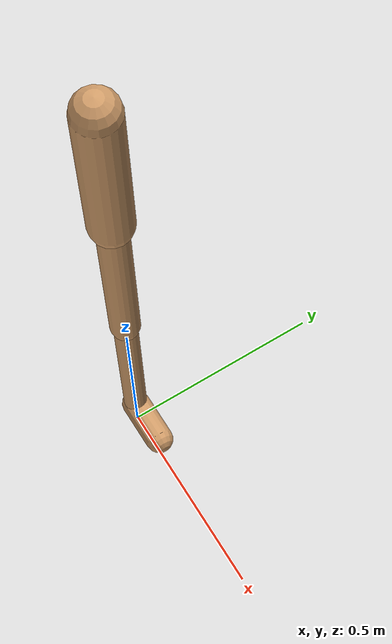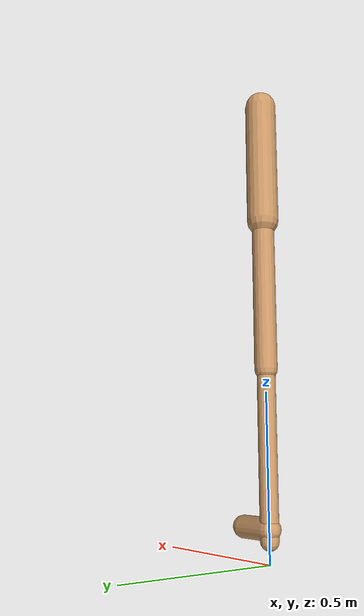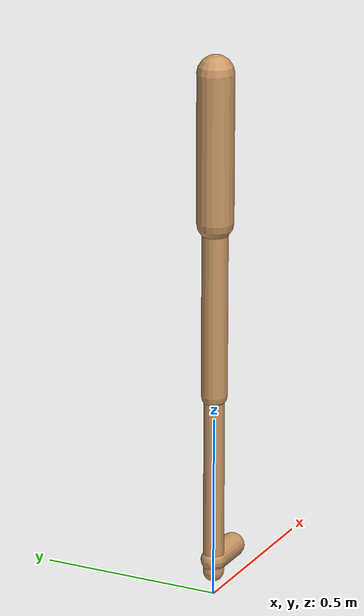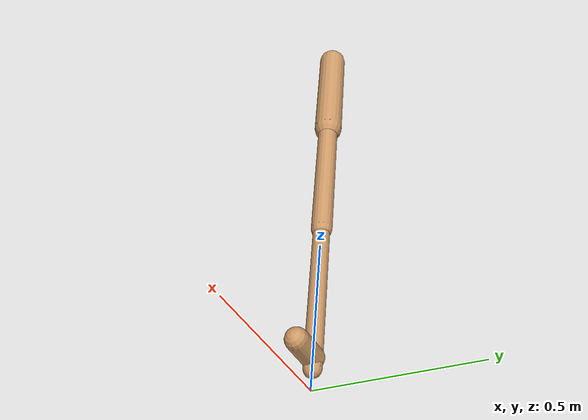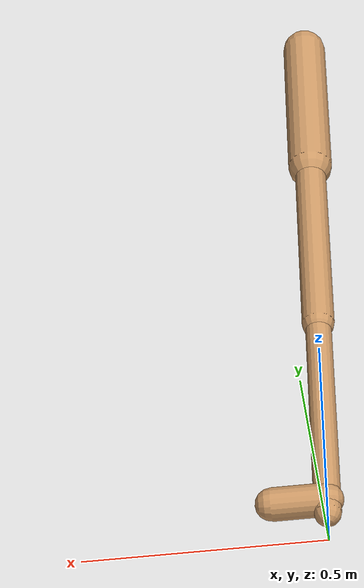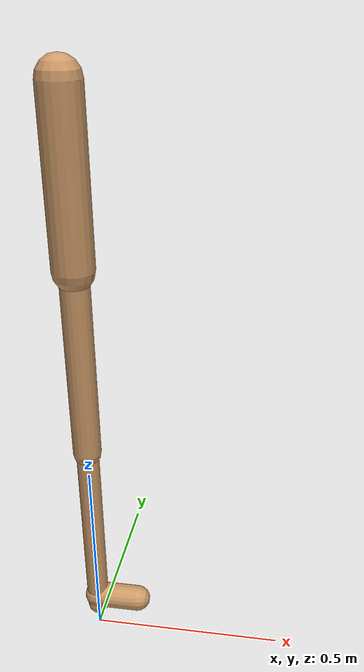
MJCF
<mujoco model="walker2d">
  <compiler angle="degree" coordinate="global" inertiafromgeom="true" />
  <default>
    <joint armature="0.01" damping=".1" limited="true" />
    <geom conaffinity="0" condim="3" contype="1" density="1000" friction="0.8 .1 .1" rgba="0.8 0.6 .4 1" />
  </default>
  <option integrator="RK4" timestep="0.002" />
  <worldbody>

    <body name="torso" pos="0 0 0.06283022448071941">
      <joint armature="0" axis="1 0 0" damping="0" limited="false" name="ignorex" pos="0 0 0" stiffness="0" type="slide" />
      <joint armature="0" axis="0 0 1" damping="0" limited="false" name="ignorez" pos="0 0 0" ref="1.25" stiffness="0" type="slide" />
      <joint armature="0" axis="0 1 0" damping="0" limited="false" name="ignorey" pos="0 0 0" stiffness="0" type="hinge" />
      <geom fromto="0 0 1.45 0 0 1.05" name="torso_geom" size="0.05010282842154815" type="capsule" />
      <body name="thigh">
        <joint axis="0 -1 0" name="thigh_joint" pos="0 0 1.05" range="-150 0" type="hinge" />
        <geom fromto="0.0 0.0 1.05 0.0 0.0 0.5702383147196592" name="thigh_geom" size="0.035332378324785384" type="capsule" />
        <body name="leg" pos="0.0 0.0 -0.029761685280340733">
          <joint axis="0 -1 0" name="leg_joint" pos="0 0 0.6" range="-150 0" type="hinge" />
          <geom fromto="0.0 0.0 0.6 0.0 0.0 0.06693146079962137" name="leg_geom" size="0.028265902659828306" type="capsule" />
          <body name="foot" pos="0.0 0.0 -0.03306853920037864">
            <joint axis="0 -1 0" name="foot_joint" pos="0 0 0.1" range="-45 45" type="hinge" />
            <geom fromto="0.0 0.0 0.1 0.11254632497031283 0.0 0.1" name="foot_geom" size="0.03445520537509037" type="capsule" />
          </body>
        </body>
      </body>

      <body name="thigh_left">
        <joint axis="0 -1 0" name="thigh_left_joint" pos="0 0 1.05" range="-150 0" type="hinge" />
        <geom fromto="0.0 0.0 1.05 0.0 0.0 0.5702383147196592" name="thigh_left_geom" rgba=".7 .3 .6 1" size="0.035332378324785384" type="capsule" />
        <body name="leg_left" pos="0.0 0.0 -0.029761685280340733">
          <joint axis="0 -1 0" name="leg_left_joint" pos="0 0 0.6" range="-150 0" type="hinge" />
          <geom fromto="0.0 0.0 0.6 0.0 0.0 0.06693146079962137" name="leg_left_geom" rgba=".7 .3 .6 1" size="0.028265902659828306" type="capsule" />
          <body name="foot_left" pos="0.0 0.0 -0.03306853920037864">
            <joint axis="0 -1 0" name="foot_left_joint" pos="0 0 0.1" range="-45 45" type="hinge" />
            <geom fromto="0.0 0.0 0.1 0.11254632497031283 0.0 0.1" name="foot_left_geom" rgba=".7 .3 .6 1" size="0.03445520537509037" type="capsule" />
          </body>
        </body>
      </body>
    </body>
  </worldbody>
  <actuator>

    <motor ctrllimited="true" ctrlrange="-1.0 1.0" gear="100" joint="thigh_joint" />
    <motor ctrllimited="true" ctrlrange="-1.0 1.0" gear="100" joint="leg_joint" />
    <motor ctrllimited="true" ctrlrange="-1.0 1.0" gear="100" joint="foot_joint" />
    <motor ctrllimited="true" ctrlrange="-1.0 1.0" gear="100" joint="thigh_left_joint" />
    <motor ctrllimited="true" ctrlrange="-1.0 1.0" gear="100" joint="leg_left_joint" />
    <motor ctrllimited="true" ctrlrange="-1.0 1.0" gear="100" joint="foot_left_joint" />

  </actuator>
</mujoco>
